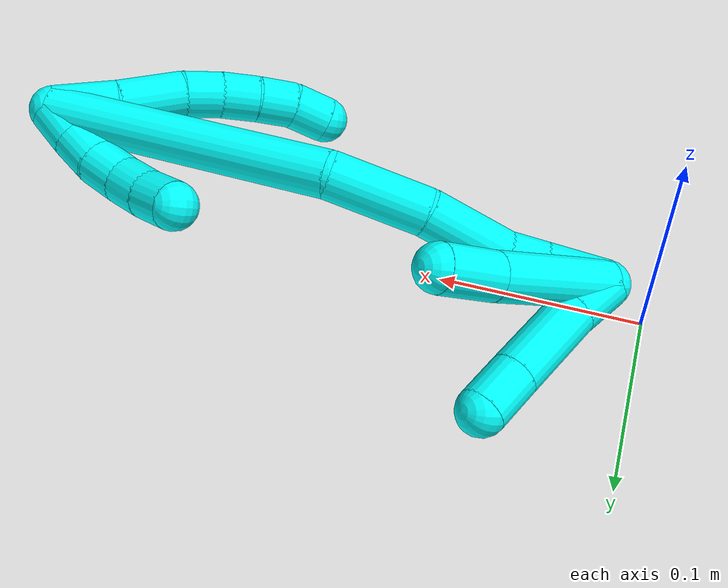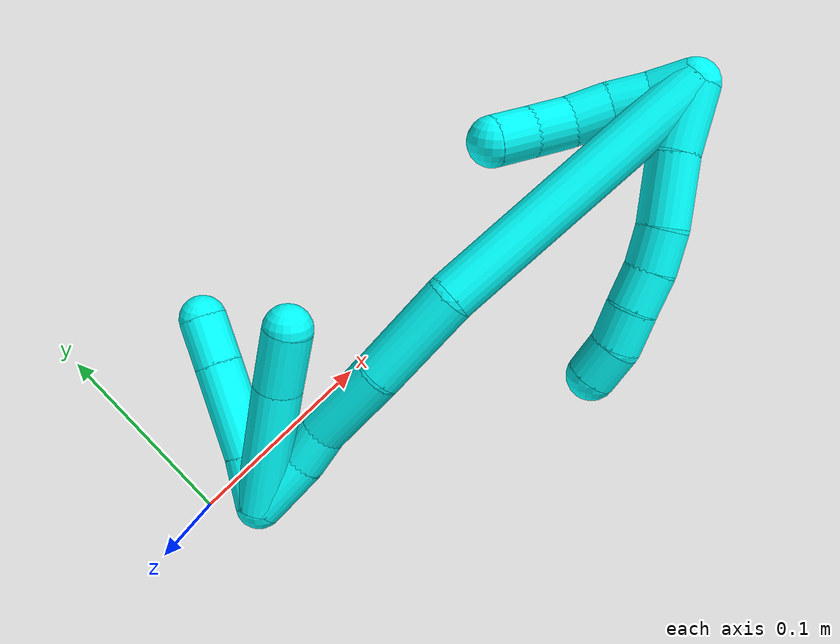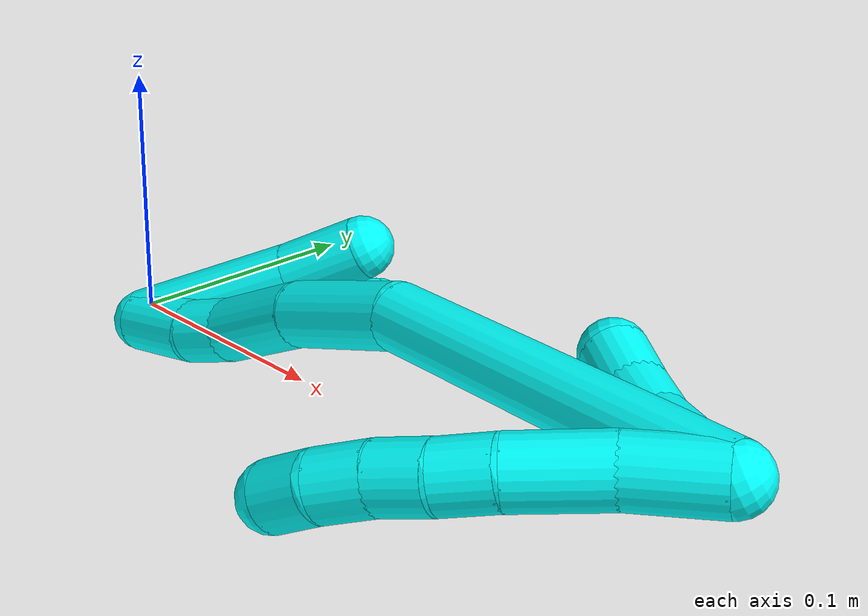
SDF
<sdf version="1.7">
 <world name="default">
  <model name="3">
   <static>0</static>
   <link name="3">
    <collision name="collision-cylinder-e_1_2_8">
     <pose>0.007163 -0.001003 -0.015039 3.07497 0.443622 2.84819</pose>
     <geometry><cylinder><radius>0.0125</radius><length>0.033375</length></cylinder></geometry>
     <surface>
      <friction><ode><mu>1.16</mu><mu2>1.16</mu2><slip1>0</slip1><slip2>0</slip2></ode></friction>
      <contact><ode><kp>1e+06</kp><kd>1</kd><max_vel>0</max_vel><min_depth>0.001</min_depth></ode></contact>
     </surface>
    </collision>
    <visual name="visual-cylinder-e_1_2_8">
     <pose>0.007163 -0.001003 -0.015039 3.07497 0.443622 2.84819</pose>
     <geometry><cylinder><radius>0.0125</radius><length>0.033375</length></cylinder></geometry>
     <material><ambient>0.003922 1 0.996078 1</ambient></material>
    </visual>
    <collision name="collision-cylinder-e_2_8_9">
     <pose>0.020682 -0.000896 -0.046401 -3.07362 0.370614 -2.78276</pose>
     <geometry><cylinder><radius>0.0125</radius><length>0.035105</length></cylinder></geometry>
     <surface>
      <friction><ode><mu>1.16</mu><mu2>1.16</mu2><slip1>0</slip1><slip2>0</slip2></ode></friction>
      <contact><ode><kp>1e+06</kp><kd>1</kd><max_vel>0</max_vel><min_depth>0.001</min_depth></ode></contact>
     </surface>
    </collision>
    <visual name="visual-cylinder-e_2_8_9">
     <pose>0.020682 -0.000896 -0.046401 -3.07362 0.370614 -2.78276</pose>
     <geometry><cylinder><radius>0.0125</radius><length>0.035105</length></cylinder></geometry>
     <material><ambient>0.003922 1 0.996078 1</ambient></material>
    </visual>
    <collision name="collision-cylinder-e_3_9_10">
     <pose>0.030069 -0.000613 -0.072595 3.0579 0.29677 2.59537</pose>
     <geometry><cylinder><radius>0.0125</radius><length>0.020717</length></cylinder></geometry>
     <surface>
      <friction><ode><mu>1.16</mu><mu2>1.16</mu2><slip1>0</slip1><slip2>0</slip2></ode></friction>
      <contact><ode><kp>1e+06</kp><kd>1</kd><max_vel>0</max_vel><min_depth>0.001</min_depth></ode></contact>
     </surface>
    </collision>
    <visual name="visual-cylinder-e_3_9_10">
     <pose>0.030069 -0.000613 -0.072595 3.0579 0.29677 2.59537</pose>
     <geometry><cylinder><radius>0.0125</radius><length>0.020717</length></cylinder></geometry>
     <material><ambient>0.003922 1 0.996078 1</ambient></material>
    </visual>
    <collision name="collision-cylinder-e_4_10_11">
     <pose>0.036315 -0.003694 -0.091721 2.90279 0.325692 1.88019</pose>
     <geometry><cylinder><radius>0.0125</radius><length>0.02011</length></cylinder></geometry>
     <surface>
      <friction><ode><mu>1.16</mu><mu2>1.16</mu2><slip1>0</slip1><slip2>0</slip2></ode></friction>
      <contact><ode><kp>1e+06</kp><kd>1</kd><max_vel>0</max_vel><min_depth>0.001</min_depth></ode></contact>
     </surface>
    </collision>
    <visual name="visual-cylinder-e_4_10_11">
     <pose>0.036315 -0.003694 -0.091721 2.90279 0.325692 1.88019</pose>
     <geometry><cylinder><radius>0.0125</radius><length>0.02011</length></cylinder></geometry>
     <material><ambient>0.003922 1 0.996078 1</ambient></material>
    </visual>
    <collision name="collision-cylinder-e_5_11_12">
     <pose>0.041707 -0.008051 -0.110739 2.92937 0.214396 1.58107</pose>
     <geometry><cylinder><radius>0.0125</radius><length>0.02044</length></cylinder></geometry>
     <surface>
      <friction><ode><mu>1.16</mu><mu2>1.16</mu2><slip1>0</slip1><slip2>0</slip2></ode></friction>
      <contact><ode><kp>1e+06</kp><kd>1</kd><max_vel>0</max_vel><min_depth>0.001</min_depth></ode></contact>
     </surface>
    </collision>
    <visual name="visual-cylinder-e_5_11_12">
     <pose>0.041707 -0.008051 -0.110739 2.92937 0.214396 1.58107</pose>
     <geometry><cylinder><radius>0.0125</radius><length>0.02044</length></cylinder></geometry>
     <material><ambient>0.003922 1 0.996078 1</ambient></material>
    </visual>
    <collision name="collision-cylinder-e_6_12_6">
     <pose>0.044969 -0.014528 -0.12957 2.69212 0.107634 0.462861</pose>
     <geometry><cylinder><radius>0.0125</radius><length>0.020253</length></cylinder></geometry>
     <surface>
      <friction><ode><mu>1.16</mu><mu2>1.16</mu2><slip1>0</slip1><slip2>0</slip2></ode></friction>
      <contact><ode><kp>1e+06</kp><kd>1</kd><max_vel>0</max_vel><min_depth>0.001</min_depth></ode></contact>
     </surface>
    </collision>
    <visual name="visual-cylinder-e_6_12_6">
     <pose>0.044969 -0.014528 -0.12957 2.69212 0.107634 0.462861</pose>
     <geometry><cylinder><radius>0.0125</radius><length>0.020253</length></cylinder></geometry>
     <material><ambient>0.003922 1 0.996078 1</ambient></material>
    </visual>
    <collision name="collision-cylinder-e_1_2_13">
     <pose>0.001057 -0.00902 -0.004186 2.00532 0.105935 0.165728</pose>
     <geometry><cylinder><radius>0.0125</radius><length>0.02</length></cylinder></geometry>
     <surface>
      <friction><ode><mu>1.16</mu><mu2>1.16</mu2><slip1>0</slip1><slip2>0</slip2></ode></friction>
      <contact><ode><kp>1e+06</kp><kd>1</kd><max_vel>0</max_vel><min_depth>0.001</min_depth></ode></contact>
     </surface>
    </collision>
    <visual name="visual-cylinder-e_1_2_13">
     <pose>0.001057 -0.00902 -0.004186 2.00532 0.105935 0.165728</pose>
     <geometry><cylinder><radius>0.0125</radius><length>0.02</length></cylinder></geometry>
     <material><ambient>0.003922 1 0.996078 1</ambient></material>
    </visual>
    <collision name="collision-cylinder-e_2_13_14">
     <pose>0.005313 -0.027018 -0.011399 1.8959 0.325544 0.449583</pose>
     <geometry><cylinder><radius>0.0125</radius><length>0.02</length></cylinder></geometry>
     <surface>
      <friction><ode><mu>1.16</mu><mu2>1.16</mu2><slip1>0</slip1><slip2>0</slip2></ode></friction>
      <contact><ode><kp>1e+06</kp><kd>1</kd><max_vel>0</max_vel><min_depth>0.001</min_depth></ode></contact>
     </surface>
    </collision>
    <visual name="visual-cylinder-e_2_13_14">
     <pose>0.005313 -0.027018 -0.011399 1.8959 0.325544 0.449583</pose>
     <geometry><cylinder><radius>0.0125</radius><length>0.02</length></cylinder></geometry>
     <material><ambient>0.003922 1 0.996078 1</ambient></material>
    </visual>
    <collision name="collision-cylinder-e_3_14_15">
     <pose>0.013188 -0.044085 -0.017989 1.9859 0.486676 0.72753</pose>
     <geometry><cylinder><radius>0.0125</radius><length>0.02</length></cylinder></geometry>
     <surface>
      <friction><ode><mu>1.16</mu><mu2>1.16</mu2><slip1>0</slip1><slip2>0</slip2></ode></friction>
      <contact><ode><kp>1e+06</kp><kd>1</kd><max_vel>0</max_vel><min_depth>0.001</min_depth></ode></contact>
     </surface>
    </collision>
    <visual name="visual-cylinder-e_3_14_15">
     <pose>0.013188 -0.044085 -0.017989 1.9859 0.486676 0.72753</pose>
     <geometry><cylinder><radius>0.0125</radius><length>0.02</length></cylinder></geometry>
     <material><ambient>0.003922 1 0.996078 1</ambient></material>
    </visual>
    <collision name="collision-cylinder-e_4_15_16">
     <pose>0.023905 -0.059857 -0.023672 1.83972 0.648446 0.831084</pose>
     <geometry><cylinder><radius>0.0125</radius><length>0.02</length></cylinder></geometry>
     <surface>
      <friction><ode><mu>1.16</mu><mu2>1.16</mu2><slip1>0</slip1><slip2>0</slip2></ode></friction>
      <contact><ode><kp>1e+06</kp><kd>1</kd><max_vel>0</max_vel><min_depth>0.001</min_depth></ode></contact>
     </surface>
    </collision>
    <visual name="visual-cylinder-e_4_15_16">
     <pose>0.023905 -0.059857 -0.023672 1.83972 0.648446 0.831084</pose>
     <geometry><cylinder><radius>0.0125</radius><length>0.02</length></cylinder></geometry>
     <material><ambient>0.003922 1 0.996078 1</ambient></material>
    </visual>
    <collision name="collision-cylinder-e_5_16_5">
     <pose>0.036867 -0.074572 -0.027412 1.79755 0.76468 0.936035</pose>
     <geometry><cylinder><radius>0.0125</radius><length>0.02</length></cylinder></geometry>
     <surface>
      <friction><ode><mu>1.16</mu><mu2>1.16</mu2><slip1>0</slip1><slip2>0</slip2></ode></friction>
      <contact><ode><kp>1e+06</kp><kd>1</kd><max_vel>0</max_vel><min_depth>0.001</min_depth></ode></contact>
     </surface>
    </collision>
    <visual name="visual-cylinder-e_5_16_5">
     <pose>0.036867 -0.074572 -0.027412 1.79755 0.76468 0.936035</pose>
     <geometry><cylinder><radius>0.0125</radius><length>0.02</length></cylinder></geometry>
     <material><ambient>0.003922 1 0.996078 1</ambient></material>
    </visual>
    <collision name="collision-cylinder-e_1_2_17">
     <pose>0.042466 -0.041615 -0.046769 2.41444 0.596042 1.35835</pose>
     <geometry><cylinder><radius>0.0125</radius><length>0.151294</length></cylinder></geometry>
     <surface>
      <friction><ode><mu>1.16</mu><mu2>1.16</mu2><slip1>0</slip1><slip2>0</slip2></ode></friction>
      <contact><ode><kp>1e+06</kp><kd>1</kd><max_vel>0</max_vel><min_depth>0.001</min_depth></ode></contact>
     </surface>
    </collision>
    <visual name="visual-cylinder-e_1_2_17">
     <pose>0.042466 -0.041615 -0.046769 2.41444 0.596042 1.35835</pose>
     <geometry><cylinder><radius>0.0125</radius><length>0.151294</length></cylinder></geometry>
     <material><ambient>0.003922 1 0.996078 1</ambient></material>
    </visual>
    <collision name="collision-cylinder-e_2_17_18">
     <pose>0.092958 -0.097137 -0.113742 2.53876 0.316222 0.947756</pose>
     <geometry><cylinder><radius>0.0125</radius><length>0.051617</length></cylinder></geometry>
     <surface>
      <friction><ode><mu>1.16</mu><mu2>1.16</mu2><slip1>0</slip1><slip2>0</slip2></ode></friction>
      <contact><ode><kp>1e+06</kp><kd>1</kd><max_vel>0</max_vel><min_depth>0.001</min_depth></ode></contact>
     </surface>
    </collision>
    <visual name="visual-cylinder-e_2_17_18">
     <pose>0.092958 -0.097137 -0.113742 2.53876 0.316222 0.947756</pose>
     <geometry><cylinder><radius>0.0125</radius><length>0.051617</length></cylinder></geometry>
     <material><ambient>0.003922 1 0.996078 1</ambient></material>
    </visual>
    <collision name="collision-cylinder-e_3_18_19">
     <pose>0.10431 -0.123819 -0.15169 2.51757 0.150981 0.460655</pose>
     <geometry><cylinder><radius>0.0125</radius><length>0.044228</length></cylinder></geometry>
     <surface>
      <friction><ode><mu>1.16</mu><mu2>1.16</mu2><slip1>0</slip1><slip2>0</slip2></ode></friction>
      <contact><ode><kp>1e+06</kp><kd>1</kd><max_vel>0</max_vel><min_depth>0.001</min_depth></ode></contact>
     </surface>
    </collision>
    <visual name="visual-cylinder-e_3_18_19">
     <pose>0.10431 -0.123819 -0.15169 2.51757 0.150981 0.460655</pose>
     <geometry><cylinder><radius>0.0125</radius><length>0.044228</length></cylinder></geometry>
     <material><ambient>0.003922 1 0.996078 1</ambient></material>
    </visual>
    <collision name="collision-cylinder-e_4_19_20">
     <pose>0.110696 -0.141 -0.178251 2.67822 0.300999 1.14256</pose>
     <geometry><cylinder><radius>0.0125</radius><length>0.020645</length></cylinder></geometry>
     <surface>
      <friction><ode><mu>1.16</mu><mu2>1.16</mu2><slip1>0</slip1><slip2>0</slip2></ode></friction>
      <contact><ode><kp>1e+06</kp><kd>1</kd><max_vel>0</max_vel><min_depth>0.001</min_depth></ode></contact>
     </surface>
    </collision>
    <visual name="visual-cylinder-e_4_19_20">
     <pose>0.110696 -0.141 -0.178251 2.67822 0.300999 1.14256</pose>
     <geometry><cylinder><radius>0.0125</radius><length>0.020645</length></cylinder></geometry>
     <material><ambient>0.003922 1 0.996078 1</ambient></material>
    </visual>
    <collision name="collision-cylinder-e_5_20_1">
     <pose>0.120666 -0.15379 -0.198963 2.52758 0.443328 1.23597</pose>
     <geometry><cylinder><radius>0.0125</radius><length>0.032216</length></cylinder></geometry>
     <surface>
      <friction><ode><mu>1.16</mu><mu2>1.16</mu2><slip1>0</slip1><slip2>0</slip2></ode></friction>
      <contact><ode><kp>1e+06</kp><kd>1</kd><max_vel>0</max_vel><min_depth>0.001</min_depth></ode></contact>
     </surface>
    </collision>
    <visual name="visual-cylinder-e_5_20_1">
     <pose>0.120666 -0.15379 -0.198963 2.52758 0.443328 1.23597</pose>
     <geometry><cylinder><radius>0.0125</radius><length>0.032216</length></cylinder></geometry>
     <material><ambient>0.003922 1 0.996078 1</ambient></material>
    </visual>
    <collision name="collision-cylinder-e_1_1_21">
     <pose>0.123142 -0.167895 -0.200064 0.487538 -0.34816 -0.087422</pose>
     <geometry><cylinder><radius>0.0125</radius><length>0.025988</length></cylinder></geometry>
     <surface>
      <friction><ode><mu>1.16</mu><mu2>1.16</mu2><slip1>0</slip1><slip2>0</slip2></ode></friction>
      <contact><ode><kp>1e+06</kp><kd>1</kd><max_vel>0</max_vel><min_depth>0.001</min_depth></ode></contact>
     </surface>
    </collision>
    <visual name="visual-cylinder-e_1_1_21">
     <pose>0.123142 -0.167895 -0.200064 0.487538 -0.34816 -0.087422</pose>
     <geometry><cylinder><radius>0.0125</radius><length>0.025988</length></cylinder></geometry>
     <material><ambient>0.003922 1 0.996078 1</ambient></material>
    </visual>
    <collision name="collision-cylinder-e_2_21_22">
     <pose>0.111223 -0.186471 -0.170136 0.591484 -0.313981 -0.096382</pose>
     <geometry><cylinder><radius>0.0125</radius><length>0.048478</length></cylinder></geometry>
     <surface>
      <friction><ode><mu>1.16</mu><mu2>1.16</mu2><slip1>0</slip1><slip2>0</slip2></ode></friction>
      <contact><ode><kp>1e+06</kp><kd>1</kd><max_vel>0</max_vel><min_depth>0.001</min_depth></ode></contact>
     </surface>
    </collision>
    <visual name="visual-cylinder-e_2_21_22">
     <pose>0.111223 -0.186471 -0.170136 0.591484 -0.313981 -0.096382</pose>
     <geometry><cylinder><radius>0.0125</radius><length>0.048478</length></cylinder></geometry>
     <material><ambient>0.003922 1 0.996078 1</ambient></material>
    </visual>
    <collision name="collision-cylinder-e_3_22_4">
     <pose>0.0998 -0.206187 -0.140977 0.60032 -0.313527 -0.097765</pose>
     <geometry><cylinder><radius>0.0125</radius><length>0.025535</length></cylinder></geometry>
     <surface>
      <friction><ode><mu>1.16</mu><mu2>1.16</mu2><slip1>0</slip1><slip2>0</slip2></ode></friction>
      <contact><ode><kp>1e+06</kp><kd>1</kd><max_vel>0</max_vel><min_depth>0.001</min_depth></ode></contact>
     </surface>
    </collision>
    <visual name="visual-cylinder-e_3_22_4">
     <pose>0.0998 -0.206187 -0.140977 0.60032 -0.313527 -0.097765</pose>
     <geometry><cylinder><radius>0.0125</radius><length>0.025535</length></cylinder></geometry>
     <material><ambient>0.003922 1 0.996078 1</ambient></material>
    </visual>
    <collision name="collision-cylinder-e_1_1_23">
     <pose>0.123493 -0.158889 -0.177127 -0.097051 -0.119903 0.00583</pose>
     <geometry><cylinder><radius>0.0125</radius><length>0.068267</length></cylinder></geometry>
     <surface>
      <friction><ode><mu>1.16</mu><mu2>1.16</mu2><slip1>0</slip1><slip2>0</slip2></ode></friction>
      <contact><ode><kp>1e+06</kp><kd>1</kd><max_vel>0</max_vel><min_depth>0.001</min_depth></ode></contact>
     </surface>
    </collision>
    <visual name="visual-cylinder-e_1_1_23">
     <pose>0.123493 -0.158889 -0.177127 -0.097051 -0.119903 0.00583</pose>
     <geometry><cylinder><radius>0.0125</radius><length>0.068267</length></cylinder></geometry>
     <material><ambient>0.003922 1 0.996078 1</ambient></material>
    </visual>
    <collision name="collision-cylinder-e_2_23_3">
     <pose>0.118276 -0.153437 -0.127721 -0.137466 -0.071534 0.004927</pose>
     <geometry><cylinder><radius>0.0125</radius><length>0.031733</length></cylinder></geometry>
     <surface>
      <friction><ode><mu>1.16</mu><mu2>1.16</mu2><slip1>0</slip1><slip2>0</slip2></ode></friction>
      <contact><ode><kp>1e+06</kp><kd>1</kd><max_vel>0</max_vel><min_depth>0.001</min_depth></ode></contact>
     </surface>
    </collision>
    <visual name="visual-cylinder-e_2_23_3">
     <pose>0.118276 -0.153437 -0.127721 -0.137466 -0.071534 0.004927</pose>
     <geometry><cylinder><radius>0.0125</radius><length>0.031733</length></cylinder></geometry>
     <material><ambient>0.003922 1 0.996078 1</ambient></material>
    </visual>
    <collision name="collision-sphere-3">
     <pose>0.117142 -0.151268 -0.112044 0 -0 0</pose>
     <geometry><sphere><radius>0.0125</radius></sphere></geometry>
     <surface>
      <friction><ode><mu>1.16</mu><mu2>1.16</mu2><slip1>0</slip1><slip2>0</slip2></ode></friction>
      <contact><ode><kp>1e+06</kp><kd>1</kd><max_vel>0</max_vel><min_depth>0.001</min_depth></ode></contact>
     </surface>
    </collision>
    <visual name="visual-sphere-3">
     <pose>0.117142 -0.151268 -0.112044 0 -0 0</pose>
     <geometry><sphere><radius>0.0125</radius></sphere></geometry>
     <material><ambient>0.003922 1 0.996078 1</ambient></material>
    </visual>
    <collision name="collision-sphere-23">
     <pose>0.11941 -0.155605 -0.143398 0 -0 0</pose>
     <geometry><sphere><radius>0.0125</radius></sphere></geometry>
     <surface>
      <friction><ode><mu>1.16</mu><mu2>1.16</mu2><slip1>0</slip1><slip2>0</slip2></ode></friction>
      <contact><ode><kp>1e+06</kp><kd>1</kd><max_vel>0</max_vel><min_depth>0.001</min_depth></ode></contact>
     </surface>
    </collision>
    <visual name="visual-sphere-23">
     <pose>0.11941 -0.155605 -0.143398 0 -0 0</pose>
     <geometry><sphere><radius>0.0125</radius></sphere></geometry>
     <material><ambient>0.003922 1 0.996078 1</ambient></material>
    </visual>
    <collision name="collision-sphere-4">
     <pose>0.095862 -0.213047 -0.130956 0 -0 0</pose>
     <geometry><sphere><radius>0.0125</radius></sphere></geometry>
     <surface>
      <friction><ode><mu>1.16</mu><mu2>1.16</mu2><slip1>0</slip1><slip2>0</slip2></ode></friction>
      <contact><ode><kp>1e+06</kp><kd>1</kd><max_vel>0</max_vel><min_depth>0.001</min_depth></ode></contact>
     </surface>
    </collision>
    <visual name="visual-sphere-4">
     <pose>0.095862 -0.213047 -0.130956 0 -0 0</pose>
     <geometry><sphere><radius>0.0125</radius></sphere></geometry>
     <material><ambient>0.003922 1 0.996078 1</ambient></material>
    </visual>
    <collision name="collision-sphere-22">
     <pose>0.103737 -0.199326 -0.150999 0 -0 0</pose>
     <geometry><sphere><radius>0.0125</radius></sphere></geometry>
     <surface>
      <friction><ode><mu>1.16</mu><mu2>1.16</mu2><slip1>0</slip1><slip2>0</slip2></ode></friction>
      <contact><ode><kp>1e+06</kp><kd>1</kd><max_vel>0</max_vel><min_depth>0.001</min_depth></ode></contact>
     </surface>
    </collision>
    <visual name="visual-sphere-22">
     <pose>0.103737 -0.199326 -0.150999 0 -0 0</pose>
     <geometry><sphere><radius>0.0125</radius></sphere></geometry>
     <material><ambient>0.003922 1 0.996078 1</ambient></material>
    </visual>
    <collision name="collision-sphere-21">
     <pose>0.118709 -0.173617 -0.189273 0 -0 0</pose>
     <geometry><sphere><radius>0.0125</radius></sphere></geometry>
     <surface>
      <friction><ode><mu>1.16</mu><mu2>1.16</mu2><slip1>0</slip1><slip2>0</slip2></ode></friction>
      <contact><ode><kp>1e+06</kp><kd>1</kd><max_vel>0</max_vel><min_depth>0.001</min_depth></ode></contact>
     </surface>
    </collision>
    <visual name="visual-sphere-21">
     <pose>0.118709 -0.173617 -0.189273 0 -0 0</pose>
     <geometry><sphere><radius>0.0125</radius></sphere></geometry>
     <material><ambient>0.003922 1 0.996078 1</ambient></material>
    </visual>
    <collision name="collision-sphere-1">
     <pose>0.127576 -0.162173 -0.210856 0 -0 0</pose>
     <geometry><sphere><radius>0.0125</radius></sphere></geometry>
     <surface>
      <friction><ode><mu>1.16</mu><mu2>1.16</mu2><slip1>0</slip1><slip2>0</slip2></ode></friction>
      <contact><ode><kp>1e+06</kp><kd>1</kd><max_vel>0</max_vel><min_depth>0.001</min_depth></ode></contact>
     </surface>
    </collision>
    <visual name="visual-sphere-1">
     <pose>0.127576 -0.162173 -0.210856 0 -0 0</pose>
     <geometry><sphere><radius>0.0125</radius></sphere></geometry>
     <material><ambient>0.003922 1 0.996078 1</ambient></material>
    </visual>
    <collision name="collision-sphere-12">
     <pose>0.043881 -0.010154 -0.120502 0 -0 0</pose>
     <geometry><sphere><radius>0.0125</radius></sphere></geometry>
     <surface>
      <friction><ode><mu>1.16</mu><mu2>1.16</mu2><slip1>0</slip1><slip2>0</slip2></ode></friction>
      <contact><ode><kp>1e+06</kp><kd>1</kd><max_vel>0</max_vel><min_depth>0.001</min_depth></ode></contact>
     </surface>
    </collision>
    <visual name="visual-sphere-12">
     <pose>0.043881 -0.010154 -0.120502 0 -0 0</pose>
     <geometry><sphere><radius>0.0125</radius></sphere></geometry>
     <material><ambient>0.003922 1 0.996078 1</ambient></material>
    </visual>
    <collision name="collision-sphere-11">
     <pose>0.039532 -0.005947 -0.100977 0 -0 0</pose>
     <geometry><sphere><radius>0.0125</radius></sphere></geometry>
     <surface>
      <friction><ode><mu>1.16</mu><mu2>1.16</mu2><slip1>0</slip1><slip2>0</slip2></ode></friction>
      <contact><ode><kp>1e+06</kp><kd>1</kd><max_vel>0</max_vel><min_depth>0.001</min_depth></ode></contact>
     </surface>
    </collision>
    <visual name="visual-sphere-11">
     <pose>0.039532 -0.005947 -0.100977 0 -0 0</pose>
     <geometry><sphere><radius>0.0125</radius></sphere></geometry>
     <material><ambient>0.003922 1 0.996078 1</ambient></material>
    </visual>
    <collision name="collision-sphere-10">
     <pose>0.033098 -0.001441 -0.082465 0 -0 0</pose>
     <geometry><sphere><radius>0.0125</radius></sphere></geometry>
     <surface>
      <friction><ode><mu>1.16</mu><mu2>1.16</mu2><slip1>0</slip1><slip2>0</slip2></ode></friction>
      <contact><ode><kp>1e+06</kp><kd>1</kd><max_vel>0</max_vel><min_depth>0.001</min_depth></ode></contact>
     </surface>
    </collision>
    <visual name="visual-sphere-10">
     <pose>0.033098 -0.001441 -0.082465 0 -0 0</pose>
     <geometry><sphere><radius>0.0125</radius></sphere></geometry>
     <material><ambient>0.003922 1 0.996078 1</ambient></material>
    </visual>
    <collision name="collision-sphere-9">
     <pose>0.02704 0.000216 -0.062724 0 -0 0</pose>
     <geometry><sphere><radius>0.0125</radius></sphere></geometry>
     <surface>
      <friction><ode><mu>1.16</mu><mu2>1.16</mu2><slip1>0</slip1><slip2>0</slip2></ode></friction>
      <contact><ode><kp>1e+06</kp><kd>1</kd><max_vel>0</max_vel><min_depth>0.001</min_depth></ode></contact>
     </surface>
    </collision>
    <visual name="visual-sphere-9">
     <pose>0.02704 0.000216 -0.062724 0 -0 0</pose>
     <geometry><sphere><radius>0.0125</radius></sphere></geometry>
     <material><ambient>0.003922 1 0.996078 1</ambient></material>
    </visual>
    <collision name="collision-sphere-2">
     <geometry><sphere><radius>0.0125</radius></sphere></geometry>
     <surface>
      <friction><ode><mu>1.16</mu><mu2>1.16</mu2><slip1>0</slip1><slip2>0</slip2></ode></friction>
      <contact><ode><kp>1e+06</kp><kd>1</kd><max_vel>0</max_vel><min_depth>0.001</min_depth></ode></contact>
     </surface>
    </collision>
    <visual name="visual-sphere-2">
     <geometry><sphere><radius>0.0125</radius></sphere></geometry>
     <material><ambient>0.003922 1 0.996078 1</ambient></material>
    </visual>
    <collision name="collision-sphere-19">
     <pose>0.107636 -0.136593 -0.169432 0 -0 0</pose>
     <geometry><sphere><radius>0.0125</radius></sphere></geometry>
     <surface>
      <friction><ode><mu>1.16</mu><mu2>1.16</mu2><slip1>0</slip1><slip2>0</slip2></ode></friction>
      <contact><ode><kp>1e+06</kp><kd>1</kd><max_vel>0</max_vel><min_depth>0.001</min_depth></ode></contact>
     </surface>
    </collision>
    <visual name="visual-sphere-19">
     <pose>0.107636 -0.136593 -0.169432 0 -0 0</pose>
     <geometry><sphere><radius>0.0125</radius></sphere></geometry>
     <material><ambient>0.003922 1 0.996078 1</ambient></material>
    </visual>
    <collision name="collision-sphere-8">
     <pose>0.014325 -0.002007 -0.030078 0 -0 0</pose>
     <geometry><sphere><radius>0.0125</radius></sphere></geometry>
     <surface>
      <friction><ode><mu>1.16</mu><mu2>1.16</mu2><slip1>0</slip1><slip2>0</slip2></ode></friction>
      <contact><ode><kp>1e+06</kp><kd>1</kd><max_vel>0</max_vel><min_depth>0.001</min_depth></ode></contact>
     </surface>
    </collision>
    <visual name="visual-sphere-8">
     <pose>0.014325 -0.002007 -0.030078 0 -0 0</pose>
     <geometry><sphere><radius>0.0125</radius></sphere></geometry>
     <material><ambient>0.003922 1 0.996078 1</ambient></material>
    </visual>
    <collision name="collision-sphere-6">
     <pose>0.046057 -0.018903 -0.138638 0 -0 0</pose>
     <geometry><sphere><radius>0.0125</radius></sphere></geometry>
     <surface>
      <friction><ode><mu>1.16</mu><mu2>1.16</mu2><slip1>0</slip1><slip2>0</slip2></ode></friction>
      <contact><ode><kp>1e+06</kp><kd>1</kd><max_vel>0</max_vel><min_depth>0.001</min_depth></ode></contact>
     </surface>
    </collision>
    <visual name="visual-sphere-6">
     <pose>0.046057 -0.018903 -0.138638 0 -0 0</pose>
     <geometry><sphere><radius>0.0125</radius></sphere></geometry>
     <material><ambient>0.003922 1 0.996078 1</ambient></material>
    </visual>
    <collision name="collision-sphere-13">
     <pose>0.002115 -0.01804 -0.008372 0 -0 0</pose>
     <geometry><sphere><radius>0.0125</radius></sphere></geometry>
     <surface>
      <friction><ode><mu>1.16</mu><mu2>1.16</mu2><slip1>0</slip1><slip2>0</slip2></ode></friction>
      <contact><ode><kp>1e+06</kp><kd>1</kd><max_vel>0</max_vel><min_depth>0.001</min_depth></ode></contact>
     </surface>
    </collision>
    <visual name="visual-sphere-13">
     <pose>0.002115 -0.01804 -0.008372 0 -0 0</pose>
     <geometry><sphere><radius>0.0125</radius></sphere></geometry>
     <material><ambient>0.003922 1 0.996078 1</ambient></material>
    </visual>
    <collision name="collision-sphere-14">
     <pose>0.008511 -0.035997 -0.014425 0 -0 0</pose>
     <geometry><sphere><radius>0.0125</radius></sphere></geometry>
     <surface>
      <friction><ode><mu>1.16</mu><mu2>1.16</mu2><slip1>0</slip1><slip2>0</slip2></ode></friction>
      <contact><ode><kp>1e+06</kp><kd>1</kd><max_vel>0</max_vel><min_depth>0.001</min_depth></ode></contact>
     </surface>
    </collision>
    <visual name="visual-sphere-14">
     <pose>0.008511 -0.035997 -0.014425 0 -0 0</pose>
     <geometry><sphere><radius>0.0125</radius></sphere></geometry>
     <material><ambient>0.003922 1 0.996078 1</ambient></material>
    </visual>
    <collision name="collision-sphere-15">
     <pose>0.017865 -0.052173 -0.021554 0 -0 0</pose>
     <geometry><sphere><radius>0.0125</radius></sphere></geometry>
     <surface>
      <friction><ode><mu>1.16</mu><mu2>1.16</mu2><slip1>0</slip1><slip2>0</slip2></ode></friction>
      <contact><ode><kp>1e+06</kp><kd>1</kd><max_vel>0</max_vel><min_depth>0.001</min_depth></ode></contact>
     </surface>
    </collision>
    <visual name="visual-sphere-15">
     <pose>0.017865 -0.052173 -0.021554 0 -0 0</pose>
     <geometry><sphere><radius>0.0125</radius></sphere></geometry>
     <material><ambient>0.003922 1 0.996078 1</ambient></material>
    </visual>
    <collision name="collision-sphere-16">
     <pose>0.029944 -0.067541 -0.025789 0 -0 0</pose>
     <geometry><sphere><radius>0.0125</radius></sphere></geometry>
     <surface>
      <friction><ode><mu>1.16</mu><mu2>1.16</mu2><slip1>0</slip1><slip2>0</slip2></ode></friction>
      <contact><ode><kp>1e+06</kp><kd>1</kd><max_vel>0</max_vel><min_depth>0.001</min_depth></ode></contact>
     </surface>
    </collision>
    <visual name="visual-sphere-16">
     <pose>0.029944 -0.067541 -0.025789 0 -0 0</pose>
     <geometry><sphere><radius>0.0125</radius></sphere></geometry>
     <material><ambient>0.003922 1 0.996078 1</ambient></material>
    </visual>
    <collision name="collision-sphere-5">
     <pose>0.04379 -0.081603 -0.029034 0 -0 0</pose>
     <geometry><sphere><radius>0.0125</radius></sphere></geometry>
     <surface>
      <friction><ode><mu>1.16</mu><mu2>1.16</mu2><slip1>0</slip1><slip2>0</slip2></ode></friction>
      <contact><ode><kp>1e+06</kp><kd>1</kd><max_vel>0</max_vel><min_depth>0.001</min_depth></ode></contact>
     </surface>
    </collision>
    <visual name="visual-sphere-5">
     <pose>0.04379 -0.081603 -0.029034 0 -0 0</pose>
     <geometry><sphere><radius>0.0125</radius></sphere></geometry>
     <material><ambient>0.003922 1 0.996078 1</ambient></material>
    </visual>
    <collision name="collision-sphere-17">
     <pose>0.084932 -0.083229 -0.093537 0 -0 0</pose>
     <geometry><sphere><radius>0.0125</radius></sphere></geometry>
     <surface>
      <friction><ode><mu>1.16</mu><mu2>1.16</mu2><slip1>0</slip1><slip2>0</slip2></ode></friction>
      <contact><ode><kp>1e+06</kp><kd>1</kd><max_vel>0</max_vel><min_depth>0.001</min_depth></ode></contact>
     </surface>
    </collision>
    <visual name="visual-sphere-17">
     <pose>0.084932 -0.083229 -0.093537 0 -0 0</pose>
     <geometry><sphere><radius>0.0125</radius></sphere></geometry>
     <material><ambient>0.003922 1 0.996078 1</ambient></material>
    </visual>
    <collision name="collision-sphere-18">
     <pose>0.100984 -0.111044 -0.133947 0 -0 0</pose>
     <geometry><sphere><radius>0.0125</radius></sphere></geometry>
     <surface>
      <friction><ode><mu>1.16</mu><mu2>1.16</mu2><slip1>0</slip1><slip2>0</slip2></ode></friction>
      <contact><ode><kp>1e+06</kp><kd>1</kd><max_vel>0</max_vel><min_depth>0.001</min_depth></ode></contact>
     </surface>
    </collision>
    <visual name="visual-sphere-18">
     <pose>0.100984 -0.111044 -0.133947 0 -0 0</pose>
     <geometry><sphere><radius>0.0125</radius></sphere></geometry>
     <material><ambient>0.003922 1 0.996078 1</ambient></material>
    </visual>
    <collision name="collision-sphere-20">
     <pose>0.113757 -0.145406 -0.18707 0 -0 0</pose>
     <geometry><sphere><radius>0.0125</radius></sphere></geometry>
     <surface>
      <friction><ode><mu>1.16</mu><mu2>1.16</mu2><slip1>0</slip1><slip2>0</slip2></ode></friction>
      <contact><ode><kp>1e+06</kp><kd>1</kd><max_vel>0</max_vel><min_depth>0.001</min_depth></ode></contact>
     </surface>
    </collision>
    <visual name="visual-sphere-20">
     <pose>0.113757 -0.145406 -0.18707 0 -0 0</pose>
     <geometry><sphere><radius>0.0125</radius></sphere></geometry>
     <material><ambient>0.003922 1 0.996078 1</ambient></material>
    </visual>
    <inertial>
     <pose>0.068029 -0.085249 -0.099997 0 -0 0</pose>
     <mass>0.75</mass>
     <inertia><ixx>0.00039</ixx><ixy>0</ixy><ixz>0</ixz><iyy>0.000346</iyy><iyz>0</iyz><izz>1e-06</izz></inertia>
    </inertial>
   </link>
   <pose>0.311689 -0.011539 0.049362 0.640255 -0.970728 -3.10793</pose>
  </model>
 </world>
</sdf>
